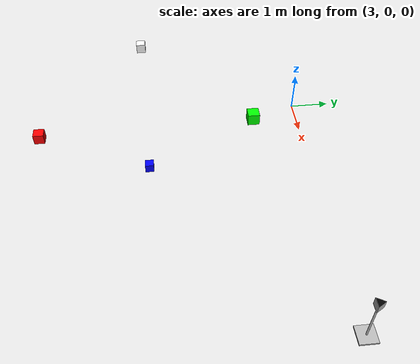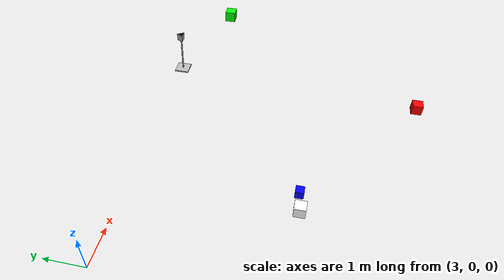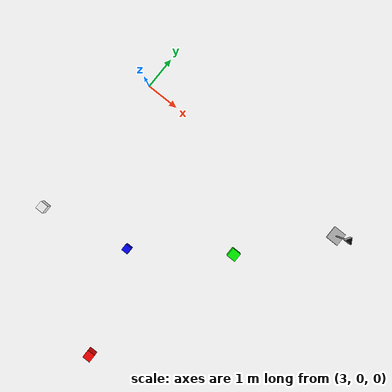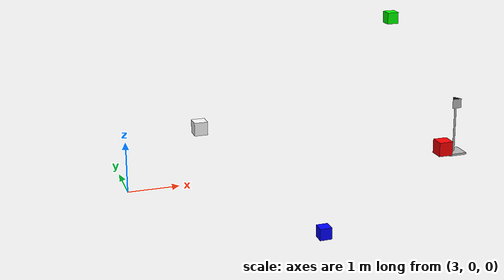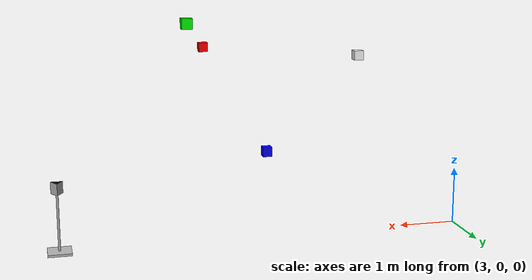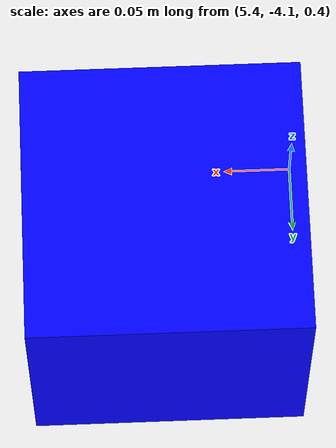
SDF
<sdf version="1.6">
 <world name="auto">
  <light type="directional" name="sun">
   <pose>0 0 10 0 0 0</pose>
   <diffuse>0.8 0.8 0.8 1</diffuse>
   <specular>0.2 0.2 0.2 1</specular>
   <attenuation>
    <range>1000</range>
    <constant>0.9</constant>
    <linear>0.01</linear>
    <quadratic>0.001</quadratic>
   </attenuation>
   <direction>-0.5 0.1 -0.9</direction>
  </light>
  <scene><shadows>false</shadows></scene>
  <spherical_coordinates>
   <surface_model>EARTH_WGS84</surface_model>
   <world_frame_orientation>ENU</world_frame_orientation>
   <latitude_deg>38.367167</latitude_deg>
   <longitude_deg>-110.714849</longitude_deg>
   <elevation>1370.0192172613349</elevation>
   <heading_deg>0</heading_deg>
  </spherical_coordinates>
  <physics type="ode">
   <real_time_update_rate>1000.0</real_time_update_rate>
   <max_step_size>0.001</max_step_size>
   <real_time_factor>1</real_time_factor>
   <ode>
    <solver>
     <type>quick</type>
     <iters>150</iters>
     <precon_iters>0</precon_iters>
     <sor>1.400000</sor>
     <use_dynamic_moi_rescaling>1</use_dynamic_moi_rescaling>
    </solver>
    <constraints>
     <cfm>0.00001</cfm>
     <erp>0.2</erp>
     <contact_max_correcting_vel>2000.000000</contact_max_correcting_vel>
     <contact_surface_layer>0.01000</contact_surface_layer>
    </constraints>
   </ode>
  </physics>
  <model name="red_cube">
   <pose>6.5 -6.0 2.5 0 0 0</pose>
   <link name="link">
    <visual name="visual">
     <geometry><box><size>0.2 0.2 0.2</size></box></geometry>
     <material>
      <ambient>0.5 0.1 0.1 1</ambient>
      <diffuse>1 0 0 1</diffuse>
      <specular>0.2 0.2 0.2 1</specular>
      <emissive>0 0 0 1</emissive>
     </material>
    </visual>
    <collision name="collision"><geometry><box><size>0.2 0.2 0.2</size></box></geometry></collision>
   </link>
  </model>
  <model name="blue_cube">
   <pose>5.5 -4.0 0.5 0 0 0</pose>
   <link name="link">
    <visual name="visual">
     <geometry><box><size>0.2 0.2 0.2</size></box></geometry>
     <material>
      <ambient>0.1 0.1 0.5 1</ambient>
      <diffuse>0 0 1 1</diffuse>
      <specular>0.2 0.2 0.2 1</specular>
      <emissive>0 0 0 1</emissive>
     </material>
    </visual>
    <collision name="collision"><geometry><box><size>0.2 0.2 0.2</size></box></geometry></collision>
   </link>
  </model>
  <model name="green_cube">
   <pose>7.5 -2.0 3.5 0 0 0</pose>
   <link name="link">
    <visual name="visual">
     <geometry><box><size>0.2 0.2 0.2</size></box></geometry>
     <material>
      <ambient>0.1 0.5 0.1 1</ambient>
      <diffuse>0 1 0 1</diffuse>
      <specular>0.2 0.2 0.2 1</specular>
      <emissive>0 0 0 1</emissive>
     </material>
    </visual>
    <collision name="collision"><geometry><box><size>0.2 0.2 0.2</size></box></geometry></collision>
   </link>
  </model>
  <model name="white_cube">
   <pose>3.5 -4.0 2.5 0 0 0</pose>
   <link name="link">
    <visual name="visual">
     <geometry><box><size>0.2 0.2 0.2</size></box></geometry>
     <material>
      <ambient>0.6 0.6 0.6 1</ambient>
      <diffuse>1 1 1 1</diffuse>
      <specular>0.3 0.3 0.3 1</specular>
      <emissive>0 0 0 1</emissive>
     </material>
    </visual>
    <collision name="collision"><geometry><box><size>0.2 0.2 0.2</size></box></geometry></collision>
   </link>
  </model>
  <include><uri>model://ar_tag</uri><pose>10 0 0 0 0 0</pose></include>
 </world>
</sdf>

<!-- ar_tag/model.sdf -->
<sdf version="1.6">
  <model name="ar_tag">
    <static>true</static>
    <link name="link">
      <inertial>
        <mass>12.0</mass>
        <inertia>
          <ixx>5200.0</ixx>
          <ixy>0.0</ixy>
          <ixz>0.0</ixz>
          <iyy>5200.0</iyy>
          <iyz>0.0</iyz>
          <izz>230.0</izz>
        </inertia>
      </inertial>
      <collision name="collision">
        <geometry>
          <mesh>
            <scale>1 1 1</scale>
            <uri>model://ar_tag/meshes/ar_tag.stl</uri>
          </mesh>
        </geometry>
      </collision>
      <visual name="visual">
        <geometry>
          <mesh>
            <scale>1 1 1</scale>
            <uri>model://ar_tag/meshes/ar_tag.dae</uri>
          </mesh>
        </geometry>
      </visual>
    </link>
  </model>
</sdf>
